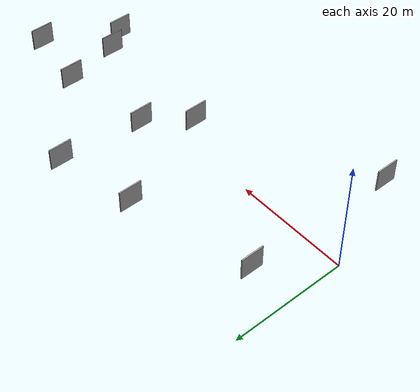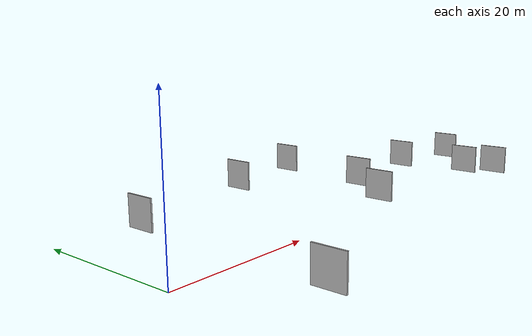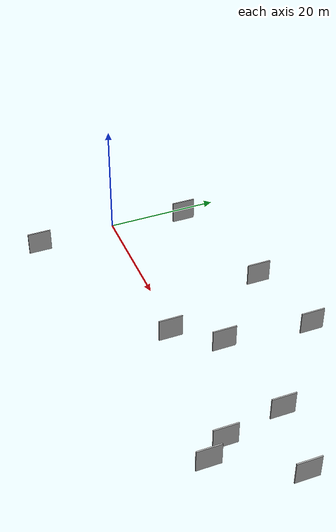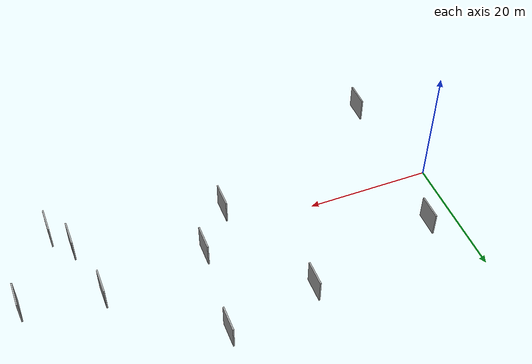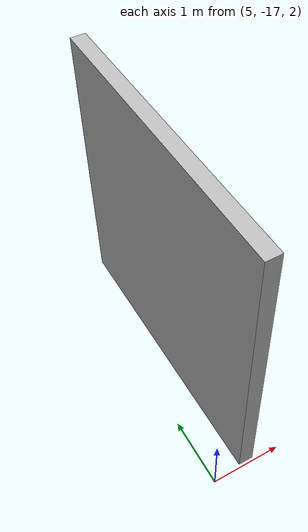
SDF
<sdf version="1.6">
 <world name="default">
  <scene>
   <sky><clouds><speed>12</speed></clouds></sky>
   <ambient>0.4 0.4 0.4 1</ambient>
   <background>0.7 0.7 0.7 1</background>
   <shadows>1</shadows>
  </scene>
  <gravity>0 0 -9.8066</gravity>
  <magnetic_field>6e-06 2.3e-05 -4.2e-05</magnetic_field>
  <physics default="0" name="default_physics" type="ode">
   <ode>
    <solver>
     <type>quick</type>
     <iters>10</iters>
     <sor>1.0</sor>
     <use_dynamic_moi_rescaling>0</use_dynamic_moi_rescaling>
    </solver>
    <constraints>
     <cfm>0</cfm>
     <erp>0.2</erp>
     <contact_max_correcting_vel>100</contact_max_correcting_vel>
     <contact_surface_layer>0.001</contact_surface_layer>
    </constraints>
   </ode>
   <max_step_size>0.004</max_step_size>
   <real_time_factor>1</real_time_factor>
   <real_time_update_rate>250</real_time_update_rate>
  </physics>
  <light name="sun" type="directional">
   <pose>0 0 10 0 0 0</pose>
   <diffuse>0.8 0.8 0.8 1</diffuse>
   <specular>0.2 0.2 0.2 1</specular>
   <attenuation>
    <range>1000</range>
    <constant>0.9</constant>
    <linear>0.01</linear>
    <quadratic>0.001</quadratic>
   </attenuation>
   <direction>-0.5 0.1 -0.9</direction>
  </light>
  <model name="grey_wall_1">
   <static>1</static>
   <pose>5.3656 -15.1330 2.5 0.000000 0.000000 1.570796</pose>
   <link name="link">
    <pose>0 0 2.00 0 0 0</pose>
    <collision name="collision"><geometry><box><size>4.00 0.2 4.00</size></box></geometry></collision>
    <visual name="visual">
     <cast_shadows>0</cast_shadows>
     <geometry><box><size>4.00 0.2 4.00</size></box></geometry>
     <material>
      <script>
       <uri>model://HANNAS_wall/materials/scripts</uri>
       <uri>model://HANNAS_wall/materials/textures</uri>
       <name>vrc/HANNAS_wall</name>
      </script>
     </material>
    </visual>
   </link>
  </model>
  <model name="grey_wall_2">
   <static>1</static>
   <pose>41.0006 19.5935 2.5 0.000000 0.000000 1.570796</pose>
   <link name="link">
    <pose>0 0 2.00 0 0 0</pose>
    <collision name="collision"><geometry><box><size>4.00 0.2 4.00</size></box></geometry></collision>
    <visual name="visual">
     <cast_shadows>0</cast_shadows>
     <geometry><box><size>4.00 0.2 4.00</size></box></geometry>
     <material>
      <script>
       <uri>model://HANNAS_wall/materials/scripts</uri>
       <uri>model://HANNAS_wall/materials/textures</uri>
       <name>vrc/HANNAS_wall</name>
      </script>
     </material>
    </visual>
   </link>
  </model>
  <model name="grey_wall_3">
   <static>1</static>
   <pose>27.0403 16.8243 2.5 0.000000 0.000000 1.570796</pose>
   <link name="link">
    <pose>0 0 2.00 0 0 0</pose>
    <collision name="collision"><geometry><box><size>4.00 0.2 4.00</size></box></geometry></collision>
    <visual name="visual">
     <cast_shadows>0</cast_shadows>
     <geometry><box><size>4.00 0.2 4.00</size></box></geometry>
     <material>
      <script>
       <uri>model://HANNAS_wall/materials/scripts</uri>
       <uri>model://HANNAS_wall/materials/textures</uri>
       <name>vrc/HANNAS_wall</name>
      </script>
     </material>
    </visual>
   </link>
  </model>
  <model name="grey_wall_4">
   <static>1</static>
   <pose>34.2761 -1.9360 2.5 0.000000 0.000000 1.570796</pose>
   <link name="link">
    <pose>0 0 2.00 0 0 0</pose>
    <collision name="collision"><geometry><box><size>4.00 0.2 4.00</size></box></geometry></collision>
    <visual name="visual">
     <cast_shadows>0</cast_shadows>
     <geometry><box><size>4.00 0.2 4.00</size></box></geometry>
     <material>
      <script>
       <uri>model://HANNAS_wall/materials/scripts</uri>
       <uri>model://HANNAS_wall/materials/textures</uri>
       <name>vrc/HANNAS_wall</name>
      </script>
     </material>
    </visual>
   </link>
  </model>
  <model name="grey_wall_5">
   <static>1</static>
   <pose>67.1758 5.0999 2.5 0.000000 0.000000 1.570796</pose>
   <link name="link">
    <pose>0 0 2.00 0 0 0</pose>
    <collision name="collision"><geometry><box><size>4.00 0.2 4.00</size></box></geometry></collision>
    <visual name="visual">
     <cast_shadows>0</cast_shadows>
     <geometry><box><size>4.00 0.2 4.00</size></box></geometry>
     <material>
      <script>
       <uri>model://HANNAS_wall/materials/scripts</uri>
       <uri>model://HANNAS_wall/materials/textures</uri>
       <name>vrc/HANNAS_wall</name>
      </script>
     </material>
    </visual>
   </link>
  </model>
  <model name="grey_wall_6">
   <static>1</static>
   <pose>60.2726 -6.6249 2.5 0.000000 0.000000 1.570796</pose>
   <link name="link">
    <pose>0 0 2.00 0 0 0</pose>
    <collision name="collision"><geometry><box><size>4.00 0.2 4.00</size></box></geometry></collision>
    <visual name="visual">
     <cast_shadows>0</cast_shadows>
     <geometry><box><size>4.00 0.2 4.00</size></box></geometry>
     <material>
      <script>
       <uri>model://HANNAS_wall/materials/scripts</uri>
       <uri>model://HANNAS_wall/materials/textures</uri>
       <name>vrc/HANNAS_wall</name>
      </script>
     </material>
    </visual>
   </link>
  </model>
  <model name="grey_wall_7">
   <static>1</static>
   <pose>39.5802 4.9560 2.5 0.000000 0.000000 1.570796</pose>
   <link name="link">
    <pose>0 0 2.00 0 0 0</pose>
    <collision name="collision"><geometry><box><size>4.00 0.2 4.00</size></box></geometry></collision>
    <visual name="visual">
     <cast_shadows>0</cast_shadows>
     <geometry><box><size>4.00 0.2 4.00</size></box></geometry>
     <material>
      <script>
       <uri>model://HANNAS_wall/materials/scripts</uri>
       <uri>model://HANNAS_wall/materials/textures</uri>
       <name>vrc/HANNAS_wall</name>
      </script>
     </material>
    </visual>
   </link>
  </model>
  <model name="grey_wall_8">
   <static>1</static>
   <pose>57.6655 -2.9235 2.5 0.000000 0.000000 1.570796</pose>
   <link name="link">
    <pose>0 0 2.00 0 0 0</pose>
    <collision name="collision"><geometry><box><size>4.00 0.2 4.00</size></box></geometry></collision>
    <visual name="visual">
     <cast_shadows>0</cast_shadows>
     <geometry><box><size>4.00 0.2 4.00</size></box></geometry>
     <material>
      <script>
       <uri>model://HANNAS_wall/materials/scripts</uri>
       <uri>model://HANNAS_wall/materials/textures</uri>
       <name>vrc/HANNAS_wall</name>
      </script>
     </material>
    </visual>
   </link>
  </model>
  <model name="grey_wall_9">
   <static>1</static>
   <pose>6.0509 11.7176 2.5 0.000000 0.000000 1.570796</pose>
   <link name="link">
    <pose>0 0 2.00 0 0 0</pose>
    <collision name="collision"><geometry><box><size>4.00 0.2 4.00</size></box></geometry></collision>
    <visual name="visual">
     <cast_shadows>0</cast_shadows>
     <geometry><box><size>4.00 0.2 4.00</size></box></geometry>
     <material>
      <script>
       <uri>model://HANNAS_wall/materials/scripts</uri>
       <uri>model://HANNAS_wall/materials/textures</uri>
       <name>vrc/HANNAS_wall</name>
      </script>
     </material>
    </visual>
   </link>
  </model>
  <model name="grey_wall_10">
   <static>1</static>
   <pose>55.5144 7.1656 2.5 0.000000 0.000000 1.570796</pose>
   <link name="link">
    <pose>0 0 2.00 0 0 0</pose>
    <collision name="collision"><geometry><box><size>4.00 0.2 4.00</size></box></geometry></collision>
    <visual name="visual">
     <cast_shadows>0</cast_shadows>
     <geometry><box><size>4.00 0.2 4.00</size></box></geometry>
     <material>
      <script>
       <uri>model://HANNAS_wall/materials/scripts</uri>
       <uri>model://HANNAS_wall/materials/textures</uri>
       <name>vrc/HANNAS_wall</name>
      </script>
     </material>
    </visual>
   </link>
  </model>
 </world>
</sdf>
